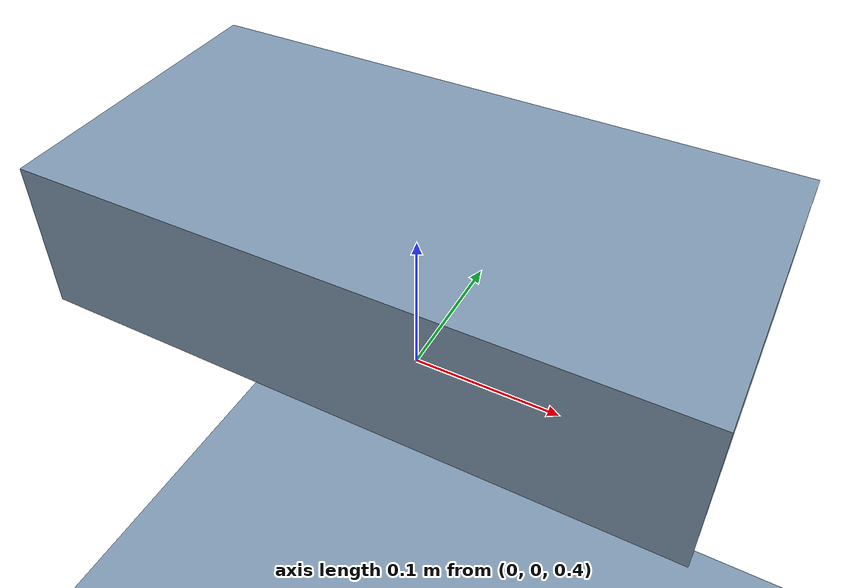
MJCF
<!-- Compatibility version for MuJoCo 2.1 -->
<mujoco model="yobotics">
    <compiler
        angle="degree"
        inertiafromgeom="true"
        coordinate="local"
        meshdir="../meshes/"
    />

    <option
        timestep="0.001"
        iterations="50"
        solver="Newton"
        tolerance="1e-10"
    />

    <size nstack="5000"/>

    <default>
        <joint limited="true" damping="0.1" armature="0.01"/>
        <motor ctrllimited="true" ctrlrange="-33.5 33.5"/>
        <geom contype="1" conaffinity="1" friction="1.0 0.1 0.1" rgba="0.5 0.6 0.7 1"/>
    </default>

    <worldbody>
        <light diffuse=".5 .5 .5" pos="0 0 3" dir="0 0 -1"/>
        <geom name="ground" type="plane" size="20 20 0.1" pos="0 0 0"/>

        <body name="trunk" pos="0 0 0.5">
            <joint type="free"/>
            <geom type="box" size="0.2 0.1 0.05"/>
        </body>
    </worldbody>
</mujoco>
